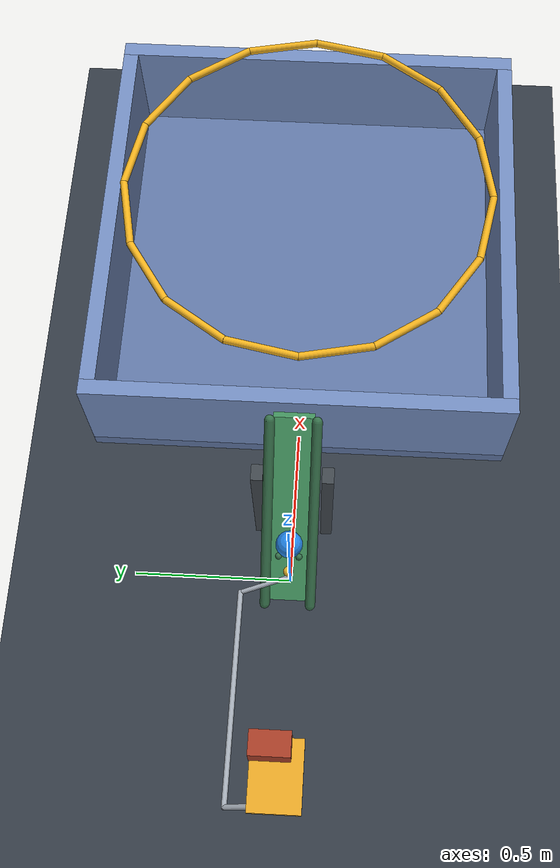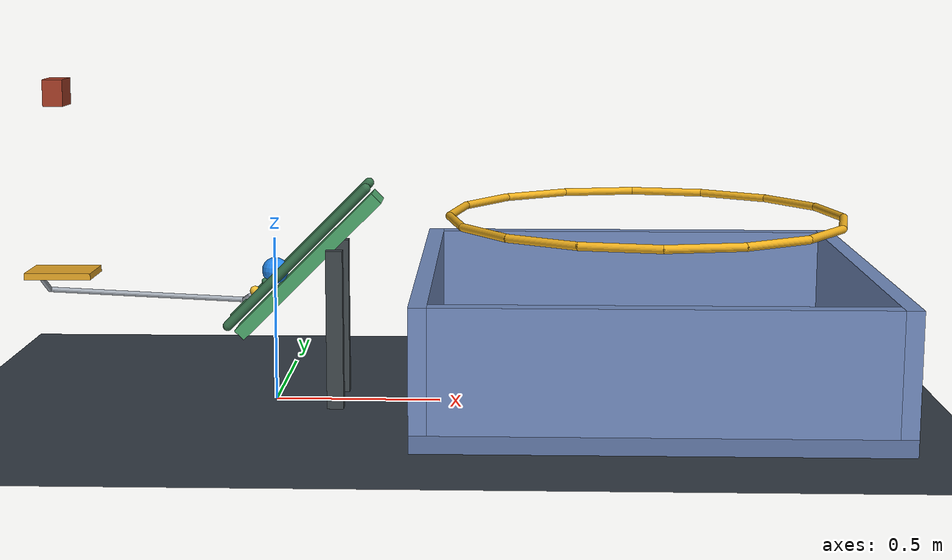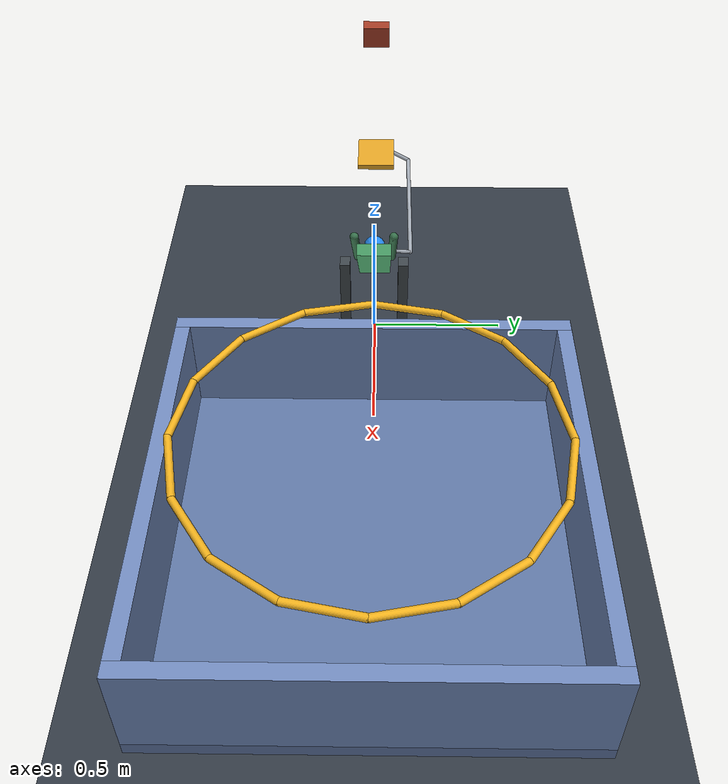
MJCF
<mujoco model="passive_spring_plunger_ball_catch">
  <compiler angle="degree" inertiafromgeom="auto"/>
  <option timestep="0.002" gravity="0 0 -9.81" integrator="implicitfast" solver="Newton" iterations="100" tolerance="1e-10"/>
  <size njmax="1000" nconmax="200"/>
  <visual>
    <headlight ambient="0.4 0.4 0.4" diffuse="0.7 0.7 0.7" specular="0.2 0.2 0.2"/>
    <map znear="0.01" zfar="20"/>
  </visual>

  <worldbody>
    <light name="overhead_light" pos="0.5 -2 4" dir="0 0 -1"/>
    <camera name="overview" pos="2.8 -4 2.6" xyaxes="0.87 0.49 0 -0.23 0.41 0.88"/>
    <geom name="floor" type="plane" size="5 5 0.1" rgba="0.20 0.23 0.27 1" friction="0.9 0.05 0.03" condim="6"/>

    <!-- The block's underside starts exactly 0.5 m above the compression plate. -->
    <body name="block" pos="-0.65 0 0.94">
      <freejoint name="block_free"/>
      <geom name="block_compressor" type="box" size="0.03 0.05 0.04" mass="1" rgba="0.65 0.24 0.15 1" friction="0.2 0.005 0.001" solref="0.006 1" solimp="0.98 0.999 0.001"/>
    </body>

    <!-- The plate retreats sideways during compression, releasing the block before rebound. -->
    <body name="plunger" pos="-0.06363961 0 0.33636039">
      <inertial pos="-0.30 0.07 0.005" mass="0.3" diaginertia="0.004 0.02 0.02"/>
      <joint name="plunger_slide" type="slide" axis="0.70710678 0 0.70710678" limited="true" range="-0.42 0.18" stiffness="150" springref="0.01387344" damping="0.12"/>
      <geom name="plunger_compression_plate" type="box" pos="-0.58636039 0 0.05363961" size="0.10 0.075 0.01" rgba="0.90 0.65 0.15 1" priority="2" condim="1" friction="0 0 0" solref="0.004 1" solimp="0.98 0.999 0.001"/>
      <geom name="plunger_plate_bracket" type="capsule" fromto="-0.66636039 0 0.05363961 -0.66636039 0.14 -0.02636039" size="0.008" rgba="0.65 0.68 0.72 1"/>
      <geom name="plunger_offset_link" type="capsule" fromto="-0.66636039 0.14 -0.02636039 -0.055 0.14 -0.055" size="0.008" rgba="0.65 0.68 0.72 1"/>
      <geom name="plunger_head_link" type="capsule" fromto="-0.055 0.14 -0.055 -0.01414214 0 -0.01414214" size="0.007" rgba="0.65 0.68 0.72 1"/>
      <geom name="plunger_striker" type="sphere" size="0.015" rgba="0.95 0.75 0.20 1" priority="2" condim="1" friction="0 0 0" solref="0.004 1" solimp="0.98 0.999 0.001"/>
    </body>

    <body name="ball" pos="0 0 0.4">
      <freejoint name="ball_free"/>
      <geom name="ball_sphere" type="sphere" size="0.04" mass="0.04" rgba="0.15 0.55 0.95 1" condim="6" friction="0.015 0.001 0.0001" solref="0.008 1" solimp="0.98 0.999 0.001"/>
    </body>

    <!-- A low-friction 45-degree launch track, with two small starting stops. -->
    <body name="ramp" pos="0 0 0">
      <geom name="ramp_track" type="box" pos="0.10414214 0 0.41928932" quat="0.92387953 0 -0.38268343 0" size="0.29698485 0.06 0.02" rgba="0.30 0.65 0.42 1" priority="1" condim="3" friction="0.015 0.001 0.0001" solref="0.008 1" solimp="0.98 0.999 0.001"/>
      <geom name="ramp_left_rail" type="capsule" fromto="-0.13767767 0.068 0.24110913 0.28232233 0.068 0.66110913" size="0.015" rgba="0.22 0.45 0.30 1" priority="1" condim="3" friction="0.015 0.001 0.0001"/>
      <geom name="ramp_right_rail" type="capsule" fromto="-0.13767767 -0.068 0.24110913 0.28232233 -0.068 0.66110913" size="0.015" rgba="0.22 0.45 0.30 1" priority="1" condim="3" friction="0.015 0.001 0.0001"/>
      <geom name="ramp_start_stop_left" type="sphere" pos="-0.02828427 0.03 0.37171573" size="0.01" rgba="0.22 0.45 0.30 1" priority="1" condim="3" friction="0.015 0.001 0.0001"/>
      <geom name="ramp_start_stop_right" type="sphere" pos="-0.02828427 -0.03 0.37171573" size="0.01" rgba="0.22 0.45 0.30 1" priority="1" condim="3" friction="0.015 0.001 0.0001"/>
      <geom name="ramp_support_left" type="box" pos="0.19 0.105 0.24" size="0.025 0.018 0.24" rgba="0.25 0.28 0.30 1"/>
      <geom name="ramp_support_right" type="box" pos="0.19 -0.105 0.24" size="0.025 0.018 0.24" rgba="0.25 0.28 0.30 1"/>
    </body>

    <!-- Horizontal flight hoop: the ball passes downward through its opening. -->
    <body name="hoop" pos="1.12 0 0.57">
      <geom name="hoop_segment_00" type="capsule" fromto="0.59 0 0 0.54508892 0.22578323 0" size="0.012" rgba="0.95 0.70 0.12 1"/>
      <geom name="hoop_segment_01" type="capsule" fromto="0.54508892 0.22578323 0 0.41719300 0.41719300 0" size="0.012" rgba="0.95 0.70 0.12 1"/>
      <geom name="hoop_segment_02" type="capsule" fromto="0.41719300 0.41719300 0 0.22578323 0.54508892 0" size="0.012" rgba="0.95 0.70 0.12 1"/>
      <geom name="hoop_segment_03" type="capsule" fromto="0.22578323 0.54508892 0 0 0.59 0" size="0.012" rgba="0.95 0.70 0.12 1"/>
      <geom name="hoop_segment_04" type="capsule" fromto="0 0.59 0 -0.22578323 0.54508892 0" size="0.012" rgba="0.95 0.70 0.12 1"/>
      <geom name="hoop_segment_05" type="capsule" fromto="-0.22578323 0.54508892 0 -0.41719300 0.41719300 0" size="0.012" rgba="0.95 0.70 0.12 1"/>
      <geom name="hoop_segment_06" type="capsule" fromto="-0.41719300 0.41719300 0 -0.54508892 0.22578323 0" size="0.012" rgba="0.95 0.70 0.12 1"/>
      <geom name="hoop_segment_07" type="capsule" fromto="-0.54508892 0.22578323 0 -0.59 0 0" size="0.012" rgba="0.95 0.70 0.12 1"/>
      <geom name="hoop_segment_08" type="capsule" fromto="-0.59 0 0 -0.54508892 -0.22578323 0" size="0.012" rgba="0.95 0.70 0.12 1"/>
      <geom name="hoop_segment_09" type="capsule" fromto="-0.54508892 -0.22578323 0 -0.41719300 -0.41719300 0" size="0.012" rgba="0.95 0.70 0.12 1"/>
      <geom name="hoop_segment_10" type="capsule" fromto="-0.41719300 -0.41719300 0 -0.22578323 -0.54508892 0" size="0.012" rgba="0.95 0.70 0.12 1"/>
      <geom name="hoop_segment_11" type="capsule" fromto="-0.22578323 -0.54508892 0 0 -0.59 0" size="0.012" rgba="0.95 0.70 0.12 1"/>
      <geom name="hoop_segment_12" type="capsule" fromto="0 -0.59 0 0.22578323 -0.54508892 0" size="0.012" rgba="0.95 0.70 0.12 1"/>
      <geom name="hoop_segment_13" type="capsule" fromto="0.22578323 -0.54508892 0 0.41719300 -0.41719300 0" size="0.012" rgba="0.95 0.70 0.12 1"/>
      <geom name="hoop_segment_14" type="capsule" fromto="0.41719300 -0.41719300 0 0.54508892 -0.22578323 0" size="0.012" rgba="0.95 0.70 0.12 1"/>
      <geom name="hoop_segment_15" type="capsule" fromto="0.54508892 -0.22578323 0 0.59 0 0" size="0.012" rgba="0.95 0.70 0.12 1"/>
    </body>

    <!-- Deep square catching cup; rolling friction dissipates the remaining motion. -->
    <body name="cup" pos="1.12 0 0">
      <geom name="cup_bottom" type="box" pos="0 0 0.05" size="0.68 0.68 0.025" rgba="0.38 0.47 0.65 1" priority="3" condim="6" friction="1 0.05 0.05" solref="0.015 1" solimp="0.98 0.999 0.001"/>
      <geom name="cup_wall_positive_x" type="box" pos="0.655 0 0.25" size="0.025 0.68 0.175" rgba="0.45 0.55 0.75 1" priority="3" condim="6" friction="1 0.05 0.05" solref="0.015 1"/>
      <geom name="cup_wall_negative_x" type="box" pos="-0.655 0 0.25" size="0.025 0.68 0.175" rgba="0.45 0.55 0.75 1" priority="3" condim="6" friction="1 0.05 0.05" solref="0.015 1"/>
      <geom name="cup_wall_positive_y" type="box" pos="0 0.655 0.25" size="0.63 0.025 0.175" rgba="0.45 0.55 0.75 1" priority="3" condim="6" friction="1 0.05 0.05" solref="0.015 1"/>
      <geom name="cup_wall_negative_y" type="box" pos="0 -0.655 0.25" size="0.63 0.025 0.175" rgba="0.45 0.55 0.75 1" priority="3" condim="6" friction="1 0.05 0.05" solref="0.015 1"/>
    </body>
  </worldbody>

  <keyframe>
    <key name="start" time="0" qpos="-0.65 0 0.94 1 0 0 0 0 0 0 0.4 1 0 0 0" qvel="0 0 0 0 0 0 0 0 0 0 0 0 0"/>
  </keyframe>
</mujoco>
